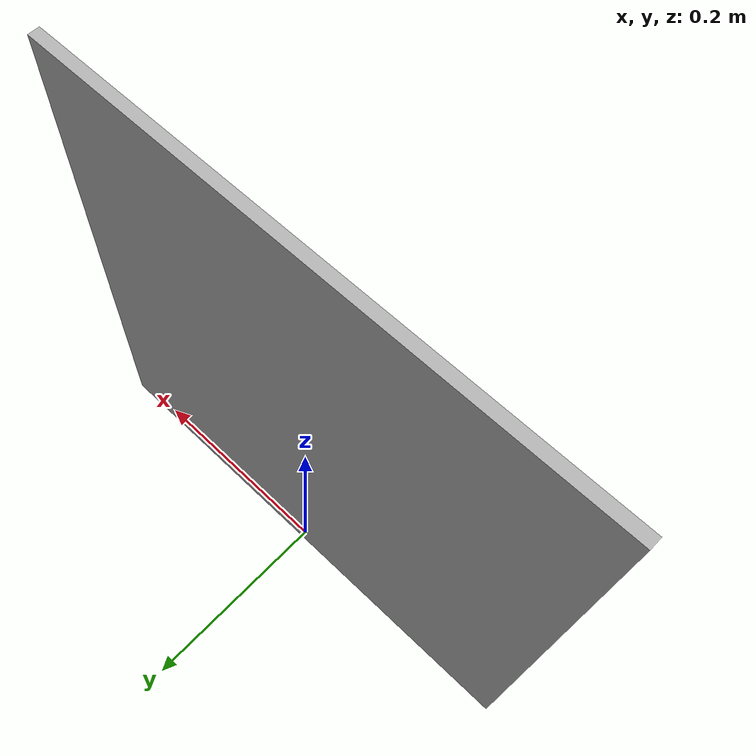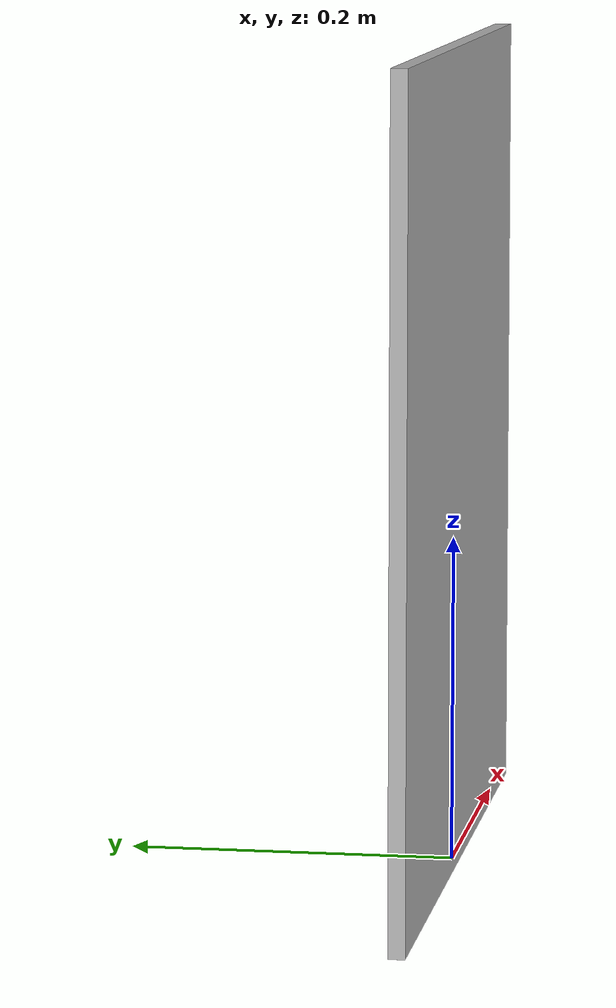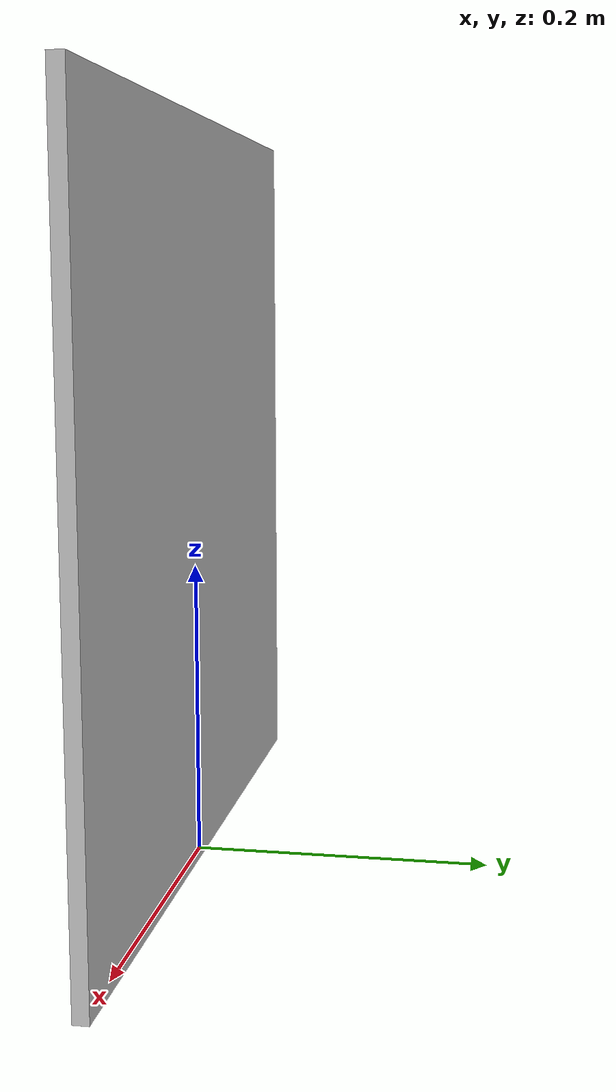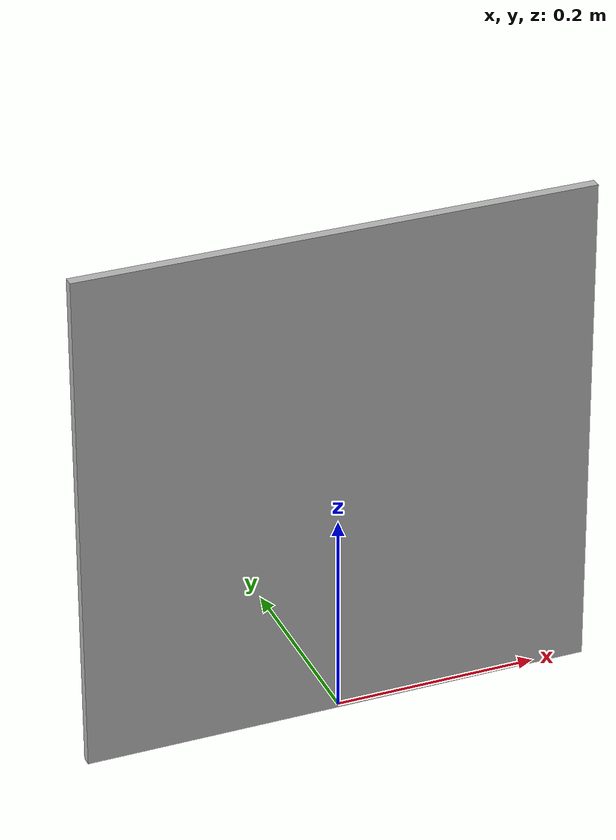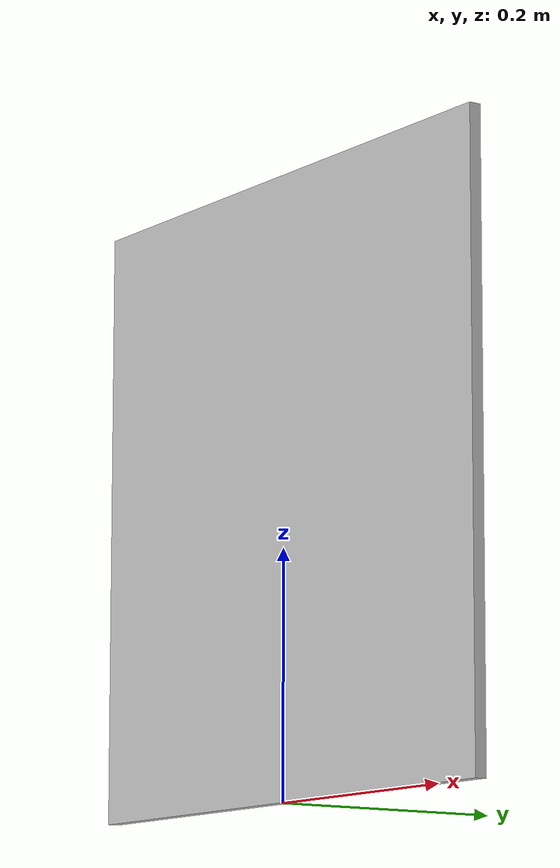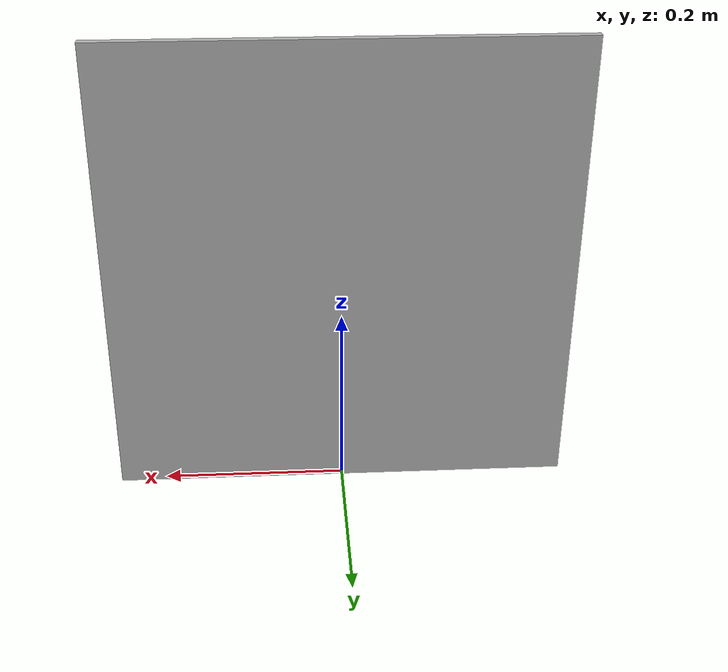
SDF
<?xml version="1.0" ?>
<sdf version="1.6">
  <model name="milk">
    <static>false</static>
    <link name="link">

      <inertial>
        <mass>1.0</mass> <pose>0 0 0.1 0 0 0</pose> <inertia>
          <ixx>0.0041</ixx> <ixy>0</ixy> <ixz>0</ixz>
          <iyy>0.0036</iyy> <iyz>0</iyz>
          <izz>0.0011</izz>
        </inertia>
      </inertial>

      <collision name="collision">
        <pose>0 0 0.1 0 0 0</pose> <geometry>
          <box>
            <size>0.06 0.095 0.2</size> </box>
        </geometry>
        <surface>
          <friction>
            <ode>
              <mu>1.0</mu> <mu2>1.0</mu2>
            </ode>
          </friction>
          <contact>
            <ode>
              <kp>1000000.0</kp> <kd>1.0</kd>
            </ode>
          </contact>
        </surface>
      </collision>

      <visual name="visual">
        <pose>0 0 0 0 0 1.570796327</pose>
        <geometry>
          <mesh>
            <uri>model://milk/meshes/milk.dae</uri>
          </mesh>
        </geometry>
      </visual>

    </link>
  </model>
</sdf>
